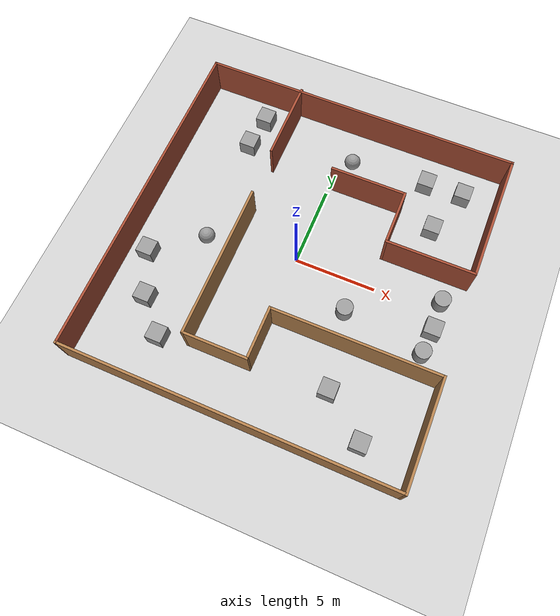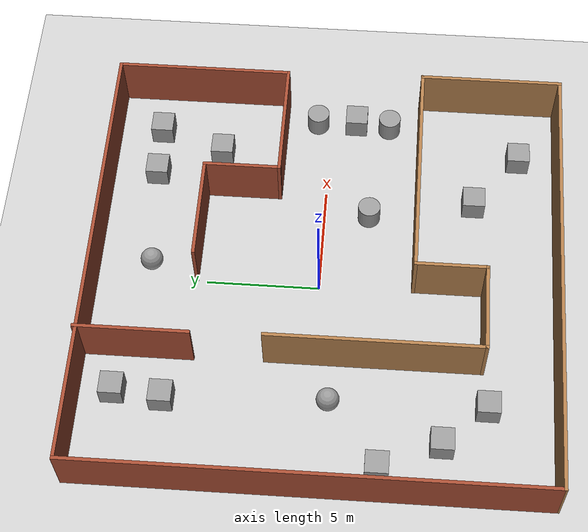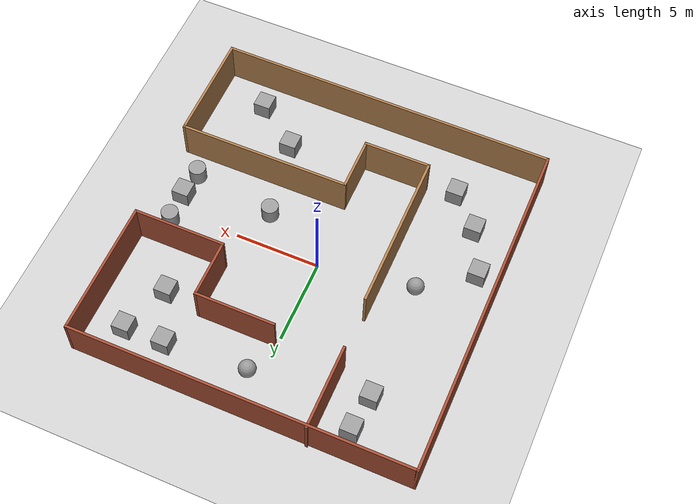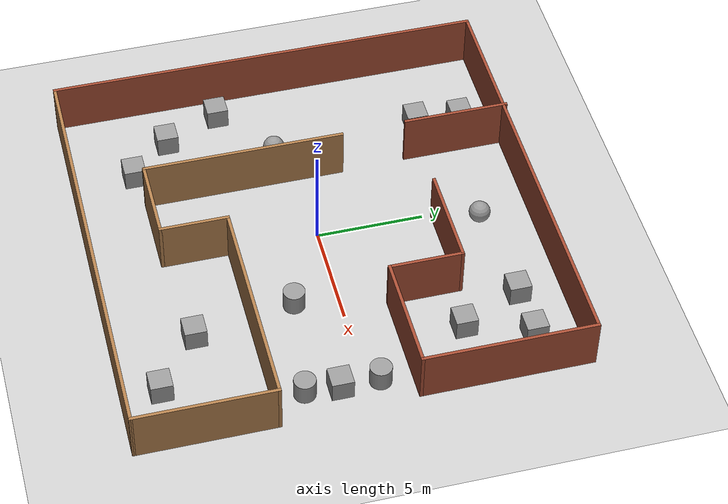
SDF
<sdf version="1.7">
 <world name="default">
  <light name="sun" type="directional">
   <pose>0 0 10 0 -0 0</pose>
   <diffuse>0.8 0.8 0.8 1</diffuse>
   <specular>0.2 0.2 0.2 1</specular>
   <attenuation>
    <range>1000</range>
    <constant>0.9</constant>
    <linear>0.01</linear>
    <quadratic>0.001</quadratic>
   </attenuation>
   <direction>-0.5 0.1 -0.9</direction>
   <spot><inner_angle>0</inner_angle><outer_angle>0</outer_angle><falloff>0</falloff></spot>
  </light>
  <model name="ground_plane">
   <static>1</static>
   <link name="link">
    <collision name="collision">
     <geometry><plane><normal>0 0 1</normal><size>100 100</size></plane></geometry>
     <surface>
      <contact><collide_bitmask>65535</collide_bitmask></contact>
      <friction><ode><mu>100</mu><mu2>50</mu2></ode></friction>
     </surface>
    </collision>
    <visual name="visual">
     <cast_shadows>0</cast_shadows>
     <geometry><plane><normal>0 0 1</normal><size>100 100</size></plane></geometry>
     <material>
      <script><uri>file://media/materials/scripts/gazebo.material</uri><name>Gazebo/Grey</name></script>
     </material>
    </visual>
   </link>
  </model>
  <gravity>0 0 -9.8</gravity>
  <magnetic_field>6e-06 2.3e-05 -4.2e-05</magnetic_field>
  <atmosphere type="adiabatic"/>
  <physics type="ode">
   <max_step_size>0.001</max_step_size>
   <real_time_factor>1</real_time_factor>
   <real_time_update_rate>1000</real_time_update_rate>
  </physics>
  <scene><ambient>0.4 0.4 0.4 1</ambient><background>0.7 0.7 0.7 1</background><shadows>1</shadows></scene>
  <spherical_coordinates>
   <surface_model>EARTH_WGS84</surface_model>
   <latitude_deg>0</latitude_deg>
   <longitude_deg>0</longitude_deg>
   <elevation>0</elevation>
   <heading_deg>0</heading_deg>
  </spherical_coordinates>
  <model name="bongworld">
   <pose>0.225731 -0.225938 0 0 -0 0</pose>
   <link name="Wall_22">
    <collision name="Wall_22_Collision">
     <geometry><box><size>20.1622 0.15 2.5</size></box></geometry>
     <pose>0 0 1.25 0 -0 0</pose>
    </collision>
    <visual name="Wall_22_Visual">
     <pose>0 0 1.25 0 -0 0</pose>
     <geometry><box><size>20.1622 0.15 2.5</size></box></geometry>
     <material>
      <script><uri>file://media/materials/scripts/gazebo.material</uri><name>Gazebo/Wood</name></script>
      <ambient>1 1 1 1</ambient>
     </material>
     <meta><layer>0</layer></meta>
    </visual>
    <pose>-0 -10.2319 0 0 -0 -0.006065</pose>
   </link>
   <link name="Wall_29">
    <collision name="Wall_29_Collision">
     <geometry><box><size>6.5 0.15 2.5</size></box></geometry>
     <pose>0 0 1.25 0 -0 0</pose>
    </collision>
    <visual name="Wall_29_Visual">
     <pose>0 0 1.25 0 -0 0</pose>
     <geometry><box><size>6.5 0.15 2.5</size></box></geometry>
     <material>
      <script><uri>file://media/materials/scripts/gazebo.material</uri><name>Gazebo/Wood</name></script>
      <ambient>1 1 1 1</ambient>
     </material>
     <meta><layer>0</layer></meta>
    </visual>
    <pose>10.0059 -7.11757 0 0 -0 1.5708</pose>
   </link>
   <link name="Wall_30">
    <collision name="Wall_30_Collision">
     <geometry><box><size>10.25 0.15 2.5</size></box></geometry>
     <pose>0 0 1.25 0 -0 0</pose>
    </collision>
    <visual name="Wall_30_Visual">
     <pose>0 0 1.25 0 -0 0</pose>
     <geometry><box><size>10.25 0.15 2.5</size></box></geometry>
     <material>
      <script><uri>file://media/materials/scripts/gazebo.material</uri><name>Gazebo/Wood</name></script>
      <ambient>1 1 1 1</ambient>
     </material>
     <meta><layer>0</layer></meta>
    </visual>
    <pose>4.95591 -3.94257 0 0 -0 3.14159</pose>
   </link>
   <link name="Wall_31">
    <collision name="Wall_31_Collision">
     <geometry><box><size>3.25 0.15 2.5</size></box></geometry>
     <pose>0 0 1.25 0 -0 0</pose>
    </collision>
    <visual name="Wall_31_Visual">
     <pose>0 0 1.25 0 -0 0</pose>
     <geometry><box><size>3.25 0.15 2.5</size></box></geometry>
     <material>
      <script><uri>file://media/materials/scripts/gazebo.material</uri><name>Gazebo/Wood</name></script>
      <ambient>1 1 1 1</ambient>
     </material>
     <meta><layer>0</layer></meta>
    </visual>
    <pose>-0.094089 -5.49257 0 0 -0 -1.5708</pose>
   </link>
   <link name="Wall_33">
    <collision name="Wall_33_Collision">
     <geometry><box><size>4 0.15 2.5</size></box></geometry>
     <pose>0 0 1.25 0 -0 0</pose>
    </collision>
    <visual name="Wall_33_Visual">
     <pose>0 0 1.25 0 -0 0</pose>
     <geometry><box><size>4 0.15 2.5</size></box></geometry>
     <material>
      <script><uri>file://media/materials/scripts/gazebo.material</uri><name>Gazebo/Wood</name></script>
      <ambient>1 1 1 1</ambient>
     </material>
     <meta><layer>0</layer></meta>
    </visual>
    <pose>-2.01909 -7.04257 0 0 -0 3.14159</pose>
   </link>
   <link name="Wall_35">
    <collision name="Wall_35_Collision">
     <geometry><box><size>9.5 0.15 2.5</size></box></geometry>
     <pose>0 0 1.25 0 -0 0</pose>
    </collision>
    <visual name="Wall_35_Visual">
     <pose>0 0 1.25 0 -0 0</pose>
     <geometry><box><size>9.5 0.15 2.5</size></box></geometry>
     <material>
      <script><uri>file://media/materials/scripts/gazebo.material</uri><name>Gazebo/Wood</name></script>
      <ambient>1 1 1 1</ambient>
     </material>
     <meta><layer>0</layer></meta>
    </visual>
    <pose>-3.94409 -2.36757 0 0 -0 1.5708</pose>
   </link>
   <link name="Wall_39">
    <collision name="Wall_39_Collision">
     <geometry><box><size>20.5 0.15 2.5</size></box></geometry>
     <pose>0 0 1.25 0 -0 0</pose>
    </collision>
    <visual name="Wall_39_Visual">
     <pose>0 0 1.25 0 -0 0</pose>
     <geometry><box><size>20.5 0.15 2.5</size></box></geometry>
     <material>
      <script><uri>file://media/materials/scripts/gazebo.material</uri><name>Gazebo/Bricks</name></script>
      <ambient>1 1 1 1</ambient>
     </material>
     <meta><layer>0</layer></meta>
    </visual>
    <pose>-10.0059 0.003801 0 0 -0 1.5708</pose>
   </link>
   <link name="Wall_40">
    <collision name="Wall_40_Collision">
     <geometry><box><size>20 0.15 2.5</size></box></geometry>
     <pose>0 0 1.25 0 -0 0</pose>
    </collision>
    <visual name="Wall_40_Visual">
     <pose>0 0 1.25 0 -0 0</pose>
     <geometry><box><size>20 0.15 2.5</size></box></geometry>
     <material>
      <script><uri>file://media/materials/scripts/gazebo.material</uri><name>Gazebo/Bricks</name></script>
      <ambient>1 1 1 1</ambient>
     </material>
     <meta><layer>0</layer></meta>
    </visual>
    <pose>-0.080911 10.1788 0 0 -0 0</pose>
   </link>
   <link name="Wall_41">
    <collision name="Wall_41_Collision">
     <geometry><box><size>8 0.15 2.5</size></box></geometry>
     <pose>0 0 1.25 0 -0 0</pose>
    </collision>
    <visual name="Wall_41_Visual">
     <pose>0 0 1.25 0 -0 0</pose>
     <geometry><box><size>8 0.15 2.5</size></box></geometry>
     <material>
      <script><uri>file://media/materials/scripts/gazebo.material</uri><name>Gazebo/Bricks</name></script>
      <ambient>1 1 1 1</ambient>
     </material>
     <meta><layer>0</layer></meta>
    </visual>
    <pose>9.84409 6.2538 0 0 -0 -1.5708</pose>
   </link>
   <link name="Wall_42">
    <collision name="Wall_42_Collision">
     <geometry><box><size>5.5 0.15 2.5</size></box></geometry>
     <pose>0 0 1.25 0 -0 0</pose>
    </collision>
    <visual name="Wall_42_Visual">
     <pose>0 0 1.25 0 -0 0</pose>
     <geometry><box><size>5.5 0.15 2.5</size></box></geometry>
     <material>
      <script><uri>file://media/materials/scripts/gazebo.material</uri><name>Gazebo/Bricks</name></script>
      <ambient>1 1 1 1</ambient>
     </material>
     <meta><layer>0</layer></meta>
    </visual>
    <pose>7.16909 2.3288 0 0 -0 3.14159</pose>
   </link>
   <link name="Wall_43">
    <collision name="Wall_43_Collision">
     <geometry><box><size>3.5 0.15 2.5</size></box></geometry>
     <pose>0 0 1.25 0 -0 0</pose>
    </collision>
    <visual name="Wall_43_Visual">
     <pose>0 0 1.25 0 -0 0</pose>
     <geometry><box><size>3.5 0.15 2.5</size></box></geometry>
     <material>
      <script><uri>file://media/materials/scripts/gazebo.material</uri><name>Gazebo/Bricks</name></script>
      <ambient>1 1 1 1</ambient>
     </material>
     <meta><layer>0</layer></meta>
    </visual>
    <pose>4.49409 4.0038 0 0 -0 1.5708</pose>
   </link>
   <link name="Wall_44">
    <collision name="Wall_44_Collision">
     <geometry><box><size>4.75 0.15 2.5</size></box></geometry>
     <pose>0 0 1.25 0 -0 0</pose>
    </collision>
    <visual name="Wall_44_Visual">
     <pose>0 0 1.25 0 -0 0</pose>
     <geometry><box><size>4.75 0.15 2.5</size></box></geometry>
     <material>
      <script><uri>file://media/materials/scripts/gazebo.material</uri><name>Gazebo/Bricks</name></script>
      <ambient>1 1 1 1</ambient>
     </material>
     <meta><layer>0</layer></meta>
    </visual>
    <pose>2.19409 5.6788 0 0 -0 3.14159</pose>
   </link>
   <link name="Wall_46">
    <collision name="Wall_46_Collision">
     <geometry><box><size>5 0.15 2.5</size></box></geometry>
     <pose>0 0 1.25 0 -0 0</pose>
    </collision>
    <visual name="Wall_46_Visual">
     <pose>0 0 1.25 0 -0 0</pose>
     <geometry><box><size>5 0.15 2.5</size></box></geometry>
     <material>
      <script><uri>file://media/materials/scripts/gazebo.material</uri><name>Gazebo/Bricks</name></script>
      <ambient>1 1 1 1</ambient>
     </material>
     <meta><layer>0</layer></meta>
    </visual>
    <pose>-4.04268 7.86802 0 0 -0 -1.5708</pose>
   </link>
   <static>1</static>
  </model>
  <model name="unit_sphere">
   <pose>0.774615 7.52795 0.5 0 -0 0</pose>
   <link name="link">
    <inertial>
     <mass>1</mass>
     <inertia><ixx>0.1</ixx><ixy>0</ixy><ixz>0</ixz><iyy>0.1</iyy><iyz>0</iyz><izz>0.1</izz></inertia>
    </inertial>
    <collision name="collision"><geometry><sphere><radius>0.5</radius></sphere></geometry></collision>
    <visual name="visual">
     <geometry><sphere><radius>0.5</radius></sphere></geometry>
     <material>
      <script><name>Gazebo/Grey</name><uri>file://media/materials/scripts/gazebo.material</uri></script>
     </material>
    </visual>
   </link>
  </model>
  <model name="unit_box">
   <pose>7.29471 -8.77529 0.499995 0 1e-05 0</pose>
   <link name="link">
    <inertial>
     <mass>1</mass>
     <inertia>
      <ixx>0.166667</ixx>
      <ixy>0</ixy>
      <ixz>0</ixz>
      <iyy>0.166667</iyy>
      <iyz>0</iyz>
      <izz>0.166667</izz>
     </inertia>
    </inertial>
    <collision name="collision"><geometry><box><size>1 1 1</size></box></geometry></collision>
    <visual name="visual">
     <geometry><box><size>1 1 1</size></box></geometry>
     <material>
      <script><name>Gazebo/Grey</name><uri>file://media/materials/scripts/gazebo.material</uri></script>
     </material>
    </visual>
   </link>
  </model>
  <model name="unit_box_0">
   <pose>4.69763 -6.74624 0.499995 -1e-05 -0 -0</pose>
   <link name="link">
    <inertial>
     <mass>1</mass>
     <inertia>
      <ixx>0.166667</ixx>
      <ixy>0</ixy>
      <ixz>0</ixz>
      <iyy>0.166667</iyy>
      <iyz>0</iyz>
      <izz>0.166667</izz>
     </inertia>
    </inertial>
    <collision name="collision"><geometry><box><size>1 1 1</size></box></geometry></collision>
    <visual name="visual">
     <geometry><box><size>1 1 1</size></box></geometry>
     <material>
      <script><name>Gazebo/Grey</name><uri>file://media/materials/scripts/gazebo.material</uri></script>
     </material>
    </visual>
   </link>
  </model>
  <model name="unit_cylinder">
   <pose>8.83209 -2.74601 0.499992 -3e-06 3e-06 0</pose>
   <link name="link">
    <inertial>
     <mass>1</mass>
     <inertia><ixx>0.145833</ixx><ixy>0</ixy><ixz>0</ixz><iyy>0.145833</iyy><iyz>0</iyz><izz>0.125</izz></inertia>
    </inertial>
    <collision name="collision">
     <geometry><cylinder><radius>0.5</radius><length>1</length></cylinder></geometry>
    </collision>
    <visual name="visual">
     <geometry><cylinder><radius>0.5</radius><length>1</length></cylinder></geometry>
     <material>
      <script><name>Gazebo/Grey</name><uri>file://media/materials/scripts/gazebo.material</uri></script>
     </material>
    </visual>
   </link>
  </model>
  <model name="unit_box_1">
   <pose>8.96477 -1.19541 0.499995 -1e-05 -0 -0</pose>
   <link name="link">
    <inertial>
     <mass>1</mass>
     <inertia>
      <ixx>0.166667</ixx>
      <ixy>0</ixy>
      <ixz>0</ixz>
      <iyy>0.166667</iyy>
      <iyz>0</iyz>
      <izz>0.166667</izz>
     </inertia>
    </inertial>
    <collision name="collision"><geometry><box><size>1 1 1</size></box></geometry></collision>
    <visual name="visual">
     <geometry><box><size>1 1 1</size></box></geometry>
     <material>
      <script><name>Gazebo/Grey</name><uri>file://media/materials/scripts/gazebo.material</uri></script>
     </material>
    </visual>
   </link>
  </model>
  <model name="unit_cylinder_0">
   <pose>8.91399 0.618474 0.499992 -3e-06 3e-06 0</pose>
   <link name="link">
    <inertial>
     <mass>1</mass>
     <inertia><ixx>0.145833</ixx><ixy>0</ixy><ixz>0</ixz><iyy>0.145833</iyy><iyz>0</iyz><izz>0.125</izz></inertia>
    </inertial>
    <collision name="collision">
     <geometry><cylinder><radius>0.5</radius><length>1</length></cylinder></geometry>
    </collision>
    <visual name="visual">
     <geometry><cylinder><radius>0.5</radius><length>1</length></cylinder></geometry>
     <material>
      <script><name>Gazebo/Grey</name><uri>file://media/materials/scripts/gazebo.material</uri></script>
     </material>
    </visual>
   </link>
  </model>
  <model name="unit_box_2">
   <pose>6.93453 4.95951 0.499995 -1e-05 -0 -0</pose>
   <link name="link">
    <inertial>
     <mass>1</mass>
     <inertia>
      <ixx>0.166667</ixx>
      <ixy>0</ixy>
      <ixz>0</ixz>
      <iyy>0.166667</iyy>
      <iyz>0</iyz>
      <izz>0.166667</izz>
     </inertia>
    </inertial>
    <collision name="collision"><geometry><box><size>1 1 1</size></box></geometry></collision>
    <visual name="visual">
     <geometry><box><size>1 1 1</size></box></geometry>
     <material>
      <script><name>Gazebo/Grey</name><uri>file://media/materials/scripts/gazebo.material</uri></script>
     </material>
    </visual>
   </link>
  </model>
  <model name="unit_box_3">
   <pose>5.61902 7.83816 0.499995 0 1e-05 0</pose>
   <link name="link">
    <inertial>
     <mass>1</mass>
     <inertia>
      <ixx>0.166667</ixx>
      <ixy>0</ixy>
      <ixz>0</ixz>
      <iyy>0.166667</iyy>
      <iyz>0</iyz>
      <izz>0.166667</izz>
     </inertia>
    </inertial>
    <collision name="collision"><geometry><box><size>1 1 1</size></box></geometry></collision>
    <visual name="visual">
     <geometry><box><size>1 1 1</size></box></geometry>
     <material>
      <script><name>Gazebo/Grey</name><uri>file://media/materials/scripts/gazebo.material</uri></script>
     </material>
    </visual>
   </link>
  </model>
  <model name="unit_box_4">
   <pose>7.98909 7.87749 0.499995 -1e-05 -0 -0</pose>
   <link name="link">
    <inertial>
     <mass>1</mass>
     <inertia>
      <ixx>0.166667</ixx>
      <ixy>0</ixy>
      <ixz>0</ixz>
      <iyy>0.166667</iyy>
      <iyz>0</iyz>
      <izz>0.166667</izz>
     </inertia>
    </inertial>
    <collision name="collision"><geometry><box><size>1 1 1</size></box></geometry></collision>
    <visual name="visual">
     <geometry><box><size>1 1 1</size></box></geometry>
     <material>
      <script><name>Gazebo/Grey</name><uri>file://media/materials/scripts/gazebo.material</uri></script>
     </material>
    </visual>
   </link>
  </model>
  <model name="unit_cylinder_1">
   <pose>3.84844 -2.02494 0.499992 -3e-06 4e-06 0</pose>
   <link name="link">
    <inertial>
     <mass>1</mass>
     <inertia><ixx>0.145833</ixx><ixy>0</ixy><ixz>0</ixz><iyy>0.145833</iyy><iyz>0</iyz><izz>0.125</izz></inertia>
    </inertial>
    <collision name="collision">
     <geometry><cylinder><radius>0.5</radius><length>1</length></cylinder></geometry>
    </collision>
    <visual name="visual">
     <geometry><cylinder><radius>0.5</radius><length>1</length></cylinder></geometry>
     <material>
      <script><name>Gazebo/Grey</name><uri>file://media/materials/scripts/gazebo.material</uri></script>
     </material>
    </visual>
   </link>
  </model>
  <model name="unit_box_5">
   <pose>-5.85998 6.29925 0.499995 -1e-05 -0 -0</pose>
   <link name="link">
    <inertial>
     <mass>1</mass>
     <inertia>
      <ixx>0.166667</ixx>
      <ixy>0</ixy>
      <ixz>0</ixz>
      <iyy>0.166667</iyy>
      <iyz>0</iyz>
      <izz>0.166667</izz>
     </inertia>
    </inertial>
    <collision name="collision"><geometry><box><size>1 1 1</size></box></geometry></collision>
    <visual name="visual">
     <geometry><box><size>1 1 1</size></box></geometry>
     <material>
      <script><name>Gazebo/Grey</name><uri>file://media/materials/scripts/gazebo.material</uri></script>
     </material>
    </visual>
   </link>
  </model>
  <model name="unit_box_6">
   <pose>-5.62911 8.41469 0.499995 0 1e-05 0</pose>
   <link name="link">
    <inertial>
     <mass>1</mass>
     <inertia>
      <ixx>0.166667</ixx>
      <ixy>0</ixy>
      <ixz>0</ixz>
      <iyy>0.166667</iyy>
      <iyz>0</iyz>
      <izz>0.166667</izz>
     </inertia>
    </inertial>
    <collision name="collision"><geometry><box><size>1 1 1</size></box></geometry></collision>
    <visual name="visual">
     <geometry><box><size>1 1 1</size></box></geometry>
     <material>
      <script><name>Gazebo/Grey</name><uri>file://media/materials/scripts/gazebo.material</uri></script>
     </material>
    </visual>
   </link>
  </model>
  <model name="unit_sphere_0">
   <pose>-5.60805 -0.744858 0.5 0 -0 0</pose>
   <link name="link">
    <inertial>
     <mass>1</mass>
     <inertia><ixx>0.1</ixx><ixy>0</ixy><ixz>0</ixz><iyy>0.1</iyy><iyz>0</iyz><izz>0.1</izz></inertia>
    </inertial>
    <collision name="collision"><geometry><sphere><radius>0.5</radius></sphere></geometry></collision>
    <visual name="visual">
     <geometry><sphere><radius>0.5</radius></sphere></geometry>
     <material>
      <script><name>Gazebo/Grey</name><uri>file://media/materials/scripts/gazebo.material</uri></script>
     </material>
    </visual>
   </link>
  </model>
  <model name="unit_box_7">
   <pose>-8.48411 -2.94485 0.499995 0 1e-05 0</pose>
   <link name="link">
    <inertial>
     <mass>1</mass>
     <inertia>
      <ixx>0.166667</ixx>
      <ixy>0</ixy>
      <ixz>0</ixz>
      <iyy>0.166667</iyy>
      <iyz>0</iyz>
      <izz>0.166667</izz>
     </inertia>
    </inertial>
    <collision name="collision"><geometry><box><size>1 1 1</size></box></geometry></collision>
    <visual name="visual">
     <geometry><box><size>1 1 1</size></box></geometry>
     <material>
      <script><name>Gazebo/Grey</name><uri>file://media/materials/scripts/gazebo.material</uri></script>
     </material>
    </visual>
   </link>
  </model>
  <model name="unit_box_8">
   <pose>-5.49722 -7.5141 0.499995 -1e-05 -0 0</pose>
   <link name="link">
    <inertial>
     <mass>1</mass>
     <inertia>
      <ixx>0.166667</ixx>
      <ixy>0</ixy>
      <ixz>0</ixz>
      <iyy>0.166667</iyy>
      <iyz>0</iyz>
      <izz>0.166667</izz>
     </inertia>
    </inertial>
    <collision name="collision"><geometry><box><size>1 1 1</size></box></geometry></collision>
    <visual name="visual">
     <geometry><box><size>1 1 1</size></box></geometry>
     <material>
      <script><name>Gazebo/Grey</name><uri>file://media/materials/scripts/gazebo.material</uri></script>
     </material>
    </visual>
   </link>
  </model>
  <model name="unit_box_9">
   <pose>-7.27983 -5.61135 0.5 0 -0 0</pose>
   <link name="link">
    <inertial>
     <mass>1</mass>
     <inertia>
      <ixx>0.166667</ixx>
      <ixy>0</ixy>
      <ixz>0</ixz>
      <iyy>0.166667</iyy>
      <iyz>0</iyz>
      <izz>0.166667</izz>
     </inertia>
    </inertial>
    <collision name="collision"><geometry><box><size>1 1 1</size></box></geometry></collision>
    <visual name="visual">
     <geometry><box><size>1 1 1</size></box></geometry>
     <material>
      <script><name>Gazebo/Grey</name><uri>file://media/materials/scripts/gazebo.material</uri></script>
     </material>
    </visual>
   </link>
  </model>
 </world>
</sdf>
